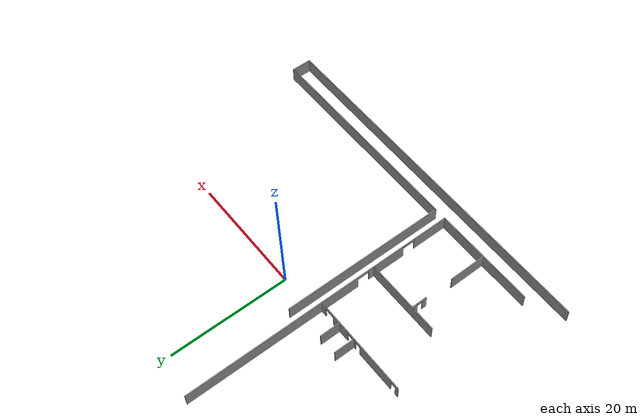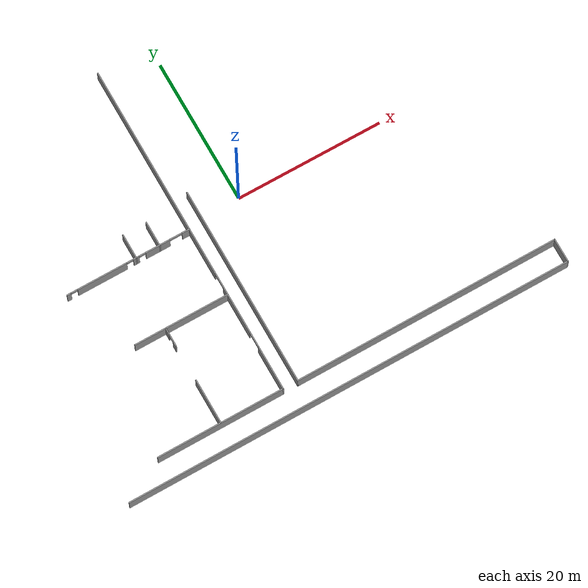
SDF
<sdf version="1.6">
 <model name="EDML">
  <link name="Wall_0">
   <pose>1.5e-05 -27.6701 0 0 -0 0</pose>
   <visual name="Wall_0_Visual">
    <pose>0 0 1.25 0 -0 0</pose>
    <geometry><box><size>61.603 0.15 2.5</size></box></geometry>
    <material>
     <script><uri>file://media/materials/scripts/gazebo.material</uri><name>Gazebo/Grey</name></script>
     <ambient>1 1 1 1</ambient>
     <diffuse>0.7 0.7 0.7 1</diffuse>
     <specular>0.01 0.01 0.01 1</specular>
     <emissive>0 0 0 1</emissive>
    </material>
   </visual>
   <collision name="Wall_0_Collision">
    <pose>0 0 1.25 0 -0 0</pose>
    <geometry><box><size>61.603 0.15 2.5</size></box></geometry>
    <surface>
     <friction>
      <ode><mu>1</mu><mu2>1</mu2><fdir1>0 0 0</fdir1><slip1>0</slip1><slip2>0</slip2></ode>
      <torsional>
       <coefficient>1</coefficient>
       <patch_radius>0</patch_radius>
       <surface_radius>0</surface_radius>
       <use_patch_radius>1</use_patch_radius>
       <ode><slip>0</slip></ode>
      </torsional>
     </friction>
     <bounce><restitution_coefficient>0</restitution_coefficient><threshold>1e+06</threshold></bounce>
     <contact>
      <collide_without_contact>0</collide_without_contact>
      <collide_without_contact_bitmask>1</collide_without_contact_bitmask>
      <collide_bitmask>1</collide_bitmask>
      <ode>
       <soft_cfm>0</soft_cfm>
       <soft_erp>0.2</soft_erp>
       <kp>1e+13</kp>
       <kd>1</kd>
       <max_vel>0.01</max_vel>
       <min_depth>0</min_depth>
      </ode>
      <bullet>
       <split_impulse>1</split_impulse>
       <split_impulse_penetration_threshold>-0.01</split_impulse_penetration_threshold>
       <soft_cfm>0</soft_cfm>
       <soft_erp>0.2</soft_erp>
       <kp>1e+13</kp>
       <kd>1</kd>
      </bullet>
     </contact>
    </surface>
   </collision>
  </link>
  <link name="Wall_10">
   <pose>-7.59652 -1.15055 0 0 -0 1.5708</pose>
   <visual name="Wall_10_Visual_0">
    <pose>-20.3098 0 1.25 0 -0 0</pose>
    <geometry><box><size>6.1505 0.15 2.5</size></box></geometry>
    <material>
     <script><uri>file://media/materials/scripts/gazebo.material</uri><name>Gazebo/Grey</name></script>
     <ambient>1 1 1 1</ambient>
     <diffuse>0.7 0.7 0.7 1</diffuse>
     <specular>0.01 0.01 0.01 1</specular>
     <emissive>0 0 0 1</emissive>
    </material>
   </visual>
   <visual name="Wall_10_Visual_1">
    <pose>-11.8405 0 1.25 0 -0 0</pose>
    <geometry><box><size>6.588 0.15 2.5</size></box></geometry>
    <material>
     <script><uri>file://media/materials/scripts/gazebo.material</uri><name>Gazebo/Grey</name></script>
     <ambient>1 1 1 1</ambient>
     <diffuse>0.7 0.7 0.7 1</diffuse>
     <specular>0.01 0.01 0.01 1</specular>
     <emissive>0 0 0 1</emissive>
    </material>
   </visual>
   <visual name="Wall_10_Visual_2">
    <pose>8.42925 0 1.25 0 -0 0</pose>
    <geometry><box><size>29.9115 0.15 2.5</size></box></geometry>
    <material>
     <script><uri>file://media/materials/scripts/gazebo.material</uri><name>Gazebo/Grey</name></script>
     <ambient>1 1 1 1</ambient>
     <diffuse>0.7 0.7 0.7 1</diffuse>
     <specular>0.01 0.01 0.01 1</specular>
     <emissive>0 0 0 1</emissive>
    </material>
   </visual>
   <visual name="Wall_10_Visual_3">
    <pose>-16.1845 0 2.25 0 -0 0</pose>
    <geometry><box><size>2.1 0.15 0.5</size></box></geometry>
    <material>
     <script><uri>file://media/materials/scripts/gazebo.material</uri><name>Gazebo/Grey</name></script>
     <ambient>1 1 1 1</ambient>
     <diffuse>0.7 0.7 0.7 1</diffuse>
     <specular>0.01 0.01 0.01 1</specular>
     <emissive>0 0 0 1</emissive>
    </material>
   </visual>
   <visual name="Wall_10_Visual_4">
    <pose>-7.53651 0 2.25 0 -0 0</pose>
    <geometry><box><size>2.02 0.15 0.5</size></box></geometry>
    <material>
     <script><uri>file://media/materials/scripts/gazebo.material</uri><name>Gazebo/Grey</name></script>
     <ambient>1 1 1 1</ambient>
     <diffuse>0.7 0.7 0.7 1</diffuse>
     <specular>0.01 0.01 0.01 1</specular>
     <emissive>0 0 0 1</emissive>
    </material>
   </visual>
   <collision name="Wall_10_Collision_0">
    <pose>-20.3098 0 1.25 0 -0 0</pose>
    <geometry><box><size>6.1505 0.15 2.5</size></box></geometry>
    <surface>
     <friction>
      <ode><mu>1</mu><mu2>1</mu2><fdir1>0 0 0</fdir1><slip1>0</slip1><slip2>0</slip2></ode>
      <torsional>
       <coefficient>1</coefficient>
       <patch_radius>0</patch_radius>
       <surface_radius>0</surface_radius>
       <use_patch_radius>1</use_patch_radius>
       <ode><slip>0</slip></ode>
      </torsional>
     </friction>
     <bounce><restitution_coefficient>0</restitution_coefficient><threshold>1e+06</threshold></bounce>
     <contact>
      <collide_without_contact>0</collide_without_contact>
      <collide_without_contact_bitmask>1</collide_without_contact_bitmask>
      <collide_bitmask>1</collide_bitmask>
      <ode>
       <soft_cfm>0</soft_cfm>
       <soft_erp>0.2</soft_erp>
       <kp>1e+13</kp>
       <kd>1</kd>
       <max_vel>0.01</max_vel>
       <min_depth>0</min_depth>
      </ode>
      <bullet>
       <split_impulse>1</split_impulse>
       <split_impulse_penetration_threshold>-0.01</split_impulse_penetration_threshold>
       <soft_cfm>0</soft_cfm>
       <soft_erp>0.2</soft_erp>
       <kp>1e+13</kp>
       <kd>1</kd>
      </bullet>
     </contact>
    </surface>
   </collision>
   <collision name="Wall_10_Collision_1">
    <pose>-11.8405 0 1.25 0 -0 0</pose>
    <geometry><box><size>6.588 0.15 2.5</size></box></geometry>
    <surface>
     <friction>
      <ode><mu>1</mu><mu2>1</mu2><fdir1>0 0 0</fdir1><slip1>0</slip1><slip2>0</slip2></ode>
      <torsional>
       <coefficient>1</coefficient>
       <patch_radius>0</patch_radius>
       <surface_radius>0</surface_radius>
       <use_patch_radius>1</use_patch_radius>
       <ode><slip>0</slip></ode>
      </torsional>
     </friction>
     <bounce><restitution_coefficient>0</restitution_coefficient><threshold>1e+06</threshold></bounce>
     <contact>
      <collide_without_contact>0</collide_without_contact>
      <collide_without_contact_bitmask>1</collide_without_contact_bitmask>
      <collide_bitmask>1</collide_bitmask>
      <ode>
       <soft_cfm>0</soft_cfm>
       <soft_erp>0.2</soft_erp>
       <kp>1e+13</kp>
       <kd>1</kd>
       <max_vel>0.01</max_vel>
       <min_depth>0</min_depth>
      </ode>
      <bullet>
       <split_impulse>1</split_impulse>
       <split_impulse_penetration_threshold>-0.01</split_impulse_penetration_threshold>
       <soft_cfm>0</soft_cfm>
       <soft_erp>0.2</soft_erp>
       <kp>1e+13</kp>
       <kd>1</kd>
      </bullet>
     </contact>
    </surface>
   </collision>
   <collision name="Wall_10_Collision_2">
    <pose>8.42925 0 1.25 0 -0 0</pose>
    <geometry><box><size>29.9115 0.15 2.5</size></box></geometry>
    <surface>
     <friction>
      <ode><mu>1</mu><mu2>1</mu2><fdir1>0 0 0</fdir1><slip1>0</slip1><slip2>0</slip2></ode>
      <torsional>
       <coefficient>1</coefficient>
       <patch_radius>0</patch_radius>
       <surface_radius>0</surface_radius>
       <use_patch_radius>1</use_patch_radius>
       <ode><slip>0</slip></ode>
      </torsional>
     </friction>
     <bounce><restitution_coefficient>0</restitution_coefficient><threshold>1e+06</threshold></bounce>
     <contact>
      <collide_without_contact>0</collide_without_contact>
      <collide_without_contact_bitmask>1</collide_without_contact_bitmask>
      <collide_bitmask>1</collide_bitmask>
      <ode>
       <soft_cfm>0</soft_cfm>
       <soft_erp>0.2</soft_erp>
       <kp>1e+13</kp>
       <kd>1</kd>
       <max_vel>0.01</max_vel>
       <min_depth>0</min_depth>
      </ode>
      <bullet>
       <split_impulse>1</split_impulse>
       <split_impulse_penetration_threshold>-0.01</split_impulse_penetration_threshold>
       <soft_cfm>0</soft_cfm>
       <soft_erp>0.2</soft_erp>
       <kp>1e+13</kp>
       <kd>1</kd>
      </bullet>
     </contact>
    </surface>
   </collision>
   <collision name="Wall_10_Collision_3">
    <pose>-16.1845 0 2.25 0 -0 0</pose>
    <geometry><box><size>2.1 0.15 0.5</size></box></geometry>
    <surface>
     <friction>
      <ode><mu>1</mu><mu2>1</mu2><fdir1>0 0 0</fdir1><slip1>0</slip1><slip2>0</slip2></ode>
      <torsional>
       <coefficient>1</coefficient>
       <patch_radius>0</patch_radius>
       <surface_radius>0</surface_radius>
       <use_patch_radius>1</use_patch_radius>
       <ode><slip>0</slip></ode>
      </torsional>
     </friction>
     <bounce><restitution_coefficient>0</restitution_coefficient><threshold>1e+06</threshold></bounce>
     <contact>
      <collide_without_contact>0</collide_without_contact>
      <collide_without_contact_bitmask>1</collide_without_contact_bitmask>
      <collide_bitmask>1</collide_bitmask>
      <ode>
       <soft_cfm>0</soft_cfm>
       <soft_erp>0.2</soft_erp>
       <kp>1e+13</kp>
       <kd>1</kd>
       <max_vel>0.01</max_vel>
       <min_depth>0</min_depth>
      </ode>
      <bullet>
       <split_impulse>1</split_impulse>
       <split_impulse_penetration_threshold>-0.01</split_impulse_penetration_threshold>
       <soft_cfm>0</soft_cfm>
       <soft_erp>0.2</soft_erp>
       <kp>1e+13</kp>
       <kd>1</kd>
      </bullet>
     </contact>
    </surface>
   </collision>
   <collision name="Wall_10_Collision_4">
    <pose>-7.53651 0 2.25 0 -0 0</pose>
    <geometry><box><size>2.02 0.15 0.5</size></box></geometry>
    <surface>
     <friction>
      <ode><mu>1</mu><mu2>1</mu2><fdir1>0 0 0</fdir1><slip1>0</slip1><slip2>0</slip2></ode>
      <torsional>
       <coefficient>1</coefficient>
       <patch_radius>0</patch_radius>
       <surface_radius>0</surface_radius>
       <use_patch_radius>1</use_patch_radius>
       <ode><slip>0</slip></ode>
      </torsional>
     </friction>
     <bounce><restitution_coefficient>0</restitution_coefficient><threshold>1e+06</threshold></bounce>
     <contact>
      <collide_without_contact>0</collide_without_contact>
      <collide_without_contact_bitmask>1</collide_without_contact_bitmask>
      <collide_bitmask>1</collide_bitmask>
      <ode>
       <soft_cfm>0</soft_cfm>
       <soft_erp>0.2</soft_erp>
       <kp>1e+13</kp>
       <kd>1</kd>
       <max_vel>0.01</max_vel>
       <min_depth>0</min_depth>
      </ode>
      <bullet>
       <split_impulse>1</split_impulse>
       <split_impulse_penetration_threshold>-0.01</split_impulse_penetration_threshold>
       <soft_cfm>0</soft_cfm>
       <soft_erp>0.2</soft_erp>
       <kp>1e+13</kp>
       <kd>1</kd>
      </bullet>
     </contact>
    </surface>
   </collision>
  </link>
  <link name="Wall_166">
   <pose>-5.54148 -10.6641 0 0 0 -1.5708</pose>
   <visual name="Wall_166_Visual">
    <pose>0 0 1.25 0 -0 0</pose>
    <geometry><box><size>27.742 0.15 2.5</size></box></geometry>
    <material>
     <script><uri>file://media/materials/scripts/gazebo.material</uri><name>Gazebo/Grey</name></script>
     <ambient>1 1 1 1</ambient>
     <diffuse>0.7 0.7 0.7 1</diffuse>
     <specular>0.01 0.01 0.01 1</specular>
     <emissive>0 0 0 1</emissive>
    </material>
   </visual>
   <collision name="Wall_166_Collision">
    <pose>0 0 1.25 0 -0 0</pose>
    <geometry><box><size>27.742 0.15 2.5</size></box></geometry>
    <surface>
     <friction>
      <ode><mu>1</mu><mu2>1</mu2><fdir1>0 0 0</fdir1><slip1>0</slip1><slip2>0</slip2></ode>
      <torsional>
       <coefficient>1</coefficient>
       <patch_radius>0</patch_radius>
       <surface_radius>0</surface_radius>
       <use_patch_radius>1</use_patch_radius>
       <ode><slip>0</slip></ode>
      </torsional>
     </friction>
     <bounce><restitution_coefficient>0</restitution_coefficient><threshold>1e+06</threshold></bounce>
     <contact>
      <collide_without_contact>0</collide_without_contact>
      <collide_without_contact_bitmask>1</collide_without_contact_bitmask>
      <collide_bitmask>1</collide_bitmask>
      <ode>
       <soft_cfm>0</soft_cfm>
       <soft_erp>0.2</soft_erp>
       <kp>1e+13</kp>
       <kd>1</kd>
       <max_vel>0.01</max_vel>
       <min_depth>0</min_depth>
      </ode>
      <bullet>
       <split_impulse>1</split_impulse>
       <split_impulse_penetration_threshold>-0.01</split_impulse_penetration_threshold>
       <soft_cfm>0</soft_cfm>
       <soft_erp>0.2</soft_erp>
       <kp>1e+13</kp>
       <kd>1</kd>
      </bullet>
     </contact>
    </surface>
   </collision>
  </link>
  <link name="Wall_167">
   <pose>12.5925 -24.4601 0 0 -0 0</pose>
   <visual name="Wall_167_Visual">
    <pose>0 0 1.25 0 -0 0</pose>
    <geometry><box><size>36.418 0.15 2.5</size></box></geometry>
    <material>
     <script><uri>file://media/materials/scripts/gazebo.material</uri><name>Gazebo/Grey</name></script>
     <ambient>1 1 1 1</ambient>
     <diffuse>0.7 0.7 0.7 1</diffuse>
     <specular>0.01 0.01 0.01 1</specular>
     <emissive>0 0 0 1</emissive>
    </material>
   </visual>
   <collision name="Wall_167_Collision">
    <pose>0 0 1.25 0 -0 0</pose>
    <geometry><box><size>36.418 0.15 2.5</size></box></geometry>
    <surface>
     <friction>
      <ode><mu>1</mu><mu2>1</mu2><fdir1>0 0 0</fdir1><slip1>0</slip1><slip2>0</slip2></ode>
      <torsional>
       <coefficient>1</coefficient>
       <patch_radius>0</patch_radius>
       <surface_radius>0</surface_radius>
       <use_patch_radius>1</use_patch_radius>
       <ode><slip>0</slip></ode>
      </torsional>
     </friction>
     <bounce><restitution_coefficient>0</restitution_coefficient><threshold>1e+06</threshold></bounce>
     <contact>
      <collide_without_contact>0</collide_without_contact>
      <collide_without_contact_bitmask>1</collide_without_contact_bitmask>
      <collide_bitmask>1</collide_bitmask>
      <ode>
       <soft_cfm>0</soft_cfm>
       <soft_erp>0.2</soft_erp>
       <kp>1e+13</kp>
       <kd>1</kd>
       <max_vel>0.01</max_vel>
       <min_depth>0</min_depth>
      </ode>
      <bullet>
       <split_impulse>1</split_impulse>
       <split_impulse_penetration_threshold>-0.01</split_impulse_penetration_threshold>
       <soft_cfm>0</soft_cfm>
       <soft_erp>0.2</soft_erp>
       <kp>1e+13</kp>
       <kd>1</kd>
      </bullet>
     </contact>
    </surface>
   </collision>
  </link>
  <link name="Wall_168">
   <pose>30.7265 -26.0651 0 0 0 -1.5708</pose>
   <visual name="Wall_168_Visual">
    <pose>0 0 1.25 0 -0 0</pose>
    <geometry><box><size>3.36 0.15 2.5</size></box></geometry>
    <material>
     <script><uri>file://media/materials/scripts/gazebo.material</uri><name>Gazebo/Grey</name></script>
     <ambient>1 1 1 1</ambient>
     <diffuse>0.7 0.7 0.7 1</diffuse>
     <specular>0.01 0.01 0.01 1</specular>
     <emissive>0 0 0 1</emissive>
    </material>
   </visual>
   <collision name="Wall_168_Collision">
    <pose>0 0 1.25 0 -0 0</pose>
    <geometry><box><size>3.36 0.15 2.5</size></box></geometry>
    <surface>
     <friction>
      <ode><mu>1</mu><mu2>1</mu2><fdir1>0 0 0</fdir1><slip1>0</slip1><slip2>0</slip2></ode>
      <torsional>
       <coefficient>1</coefficient>
       <patch_radius>0</patch_radius>
       <surface_radius>0</surface_radius>
       <use_patch_radius>1</use_patch_radius>
       <ode><slip>0</slip></ode>
      </torsional>
     </friction>
     <bounce><restitution_coefficient>0</restitution_coefficient><threshold>1e+06</threshold></bounce>
     <contact>
      <collide_without_contact>0</collide_without_contact>
      <collide_without_contact_bitmask>1</collide_without_contact_bitmask>
      <collide_bitmask>1</collide_bitmask>
      <ode>
       <soft_cfm>0</soft_cfm>
       <soft_erp>0.2</soft_erp>
       <kp>1e+13</kp>
       <kd>1</kd>
       <max_vel>0.01</max_vel>
       <min_depth>0</min_depth>
      </ode>
      <bullet>
       <split_impulse>1</split_impulse>
       <split_impulse_penetration_threshold>-0.01</split_impulse_penetration_threshold>
       <soft_cfm>0</soft_cfm>
       <soft_erp>0.2</soft_erp>
       <kp>1e+13</kp>
       <kd>1</kd>
      </bullet>
     </contact>
    </surface>
   </collision>
  </link>
  <link name="Wall_57">
   <pose>-14.0803 -10.7286 0 0 -0 3.14159</pose>
   <visual name="Wall_57_Visual">
    <pose>0 0 1.25 0 -0 0</pose>
    <geometry><box><size>13.087 0.15 2.5</size></box></geometry>
    <material>
     <script><uri>file://media/materials/scripts/gazebo.material</uri><name>Gazebo/Grey</name></script>
     <ambient>1 1 1 1</ambient>
     <diffuse>0.7 0.7 0.7 1</diffuse>
     <specular>0.01 0.01 0.01 1</specular>
     <emissive>0 0 0 1</emissive>
    </material>
   </visual>
   <collision name="Wall_57_Collision">
    <pose>0 0 1.25 0 -0 0</pose>
    <geometry><box><size>13.087 0.15 2.5</size></box></geometry>
    <surface>
     <friction>
      <ode><mu>1</mu><mu2>1</mu2><fdir1>0 0 0</fdir1><slip1>0</slip1><slip2>0</slip2></ode>
      <torsional>
       <coefficient>1</coefficient>
       <patch_radius>0</patch_radius>
       <surface_radius>0</surface_radius>
       <use_patch_radius>1</use_patch_radius>
       <ode><slip>0</slip></ode>
      </torsional>
     </friction>
     <bounce><restitution_coefficient>0</restitution_coefficient><threshold>1e+06</threshold></bounce>
     <contact>
      <collide_without_contact>0</collide_without_contact>
      <collide_without_contact_bitmask>1</collide_without_contact_bitmask>
      <collide_bitmask>1</collide_bitmask>
      <ode>
       <soft_cfm>0</soft_cfm>
       <soft_erp>0.2</soft_erp>
       <kp>1e+13</kp>
       <kd>1</kd>
       <max_vel>0.01</max_vel>
       <min_depth>0</min_depth>
      </ode>
      <bullet>
       <split_impulse>1</split_impulse>
       <split_impulse_penetration_threshold>-0.01</split_impulse_penetration_threshold>
       <soft_cfm>0</soft_cfm>
       <soft_erp>0.2</soft_erp>
       <kp>1e+13</kp>
       <kd>1</kd>
      </bullet>
     </contact>
    </surface>
   </collision>
  </link>
  <link name="Wall_64">
   <pose>-16.2755 -21.3797 0 0 0 -1.5708</pose>
   <visual name="Wall_64_Visual">
    <pose>0 0 1.25 0 -0 0</pose>
    <geometry><box><size>6.25 0.15 2.5</size></box></geometry>
    <material>
     <script><uri>file://media/materials/scripts/gazebo.material</uri><name>Gazebo/Grey</name></script>
     <ambient>1 1 1 1</ambient>
     <diffuse>0.7 0.7 0.7 1</diffuse>
     <specular>0.01 0.01 0.01 1</specular>
     <emissive>0 0 0 1</emissive>
    </material>
   </visual>
   <collision name="Wall_64_Collision">
    <pose>0 0 1.25 0 -0 0</pose>
    <geometry><box><size>6.25 0.15 2.5</size></box></geometry>
    <surface>
     <friction>
      <ode><mu>1</mu><mu2>1</mu2><fdir1>0 0 0</fdir1><slip1>0</slip1><slip2>0</slip2></ode>
      <torsional>
       <coefficient>1</coefficient>
       <patch_radius>0</patch_radius>
       <surface_radius>0</surface_radius>
       <use_patch_radius>1</use_patch_radius>
       <ode><slip>0</slip></ode>
      </torsional>
     </friction>
     <bounce><restitution_coefficient>0</restitution_coefficient><threshold>1e+06</threshold></bounce>
     <contact>
      <collide_without_contact>0</collide_without_contact>
      <collide_without_contact_bitmask>1</collide_without_contact_bitmask>
      <collide_bitmask>1</collide_bitmask>
      <ode>
       <soft_cfm>0</soft_cfm>
       <soft_erp>0.2</soft_erp>
       <kp>1e+13</kp>
       <kd>1</kd>
       <max_vel>0.01</max_vel>
       <min_depth>0</min_depth>
      </ode>
      <bullet>
       <split_impulse>1</split_impulse>
       <split_impulse_penetration_threshold>-0.01</split_impulse_penetration_threshold>
       <soft_cfm>0</soft_cfm>
       <soft_erp>0.2</soft_erp>
       <kp>1e+13</kp>
       <kd>1</kd>
      </bullet>
     </contact>
    </surface>
   </collision>
  </link>
  <link name="Wall_68">
   <pose>-16.2825 -12.0341 0 0 0 -1.5708</pose>
   <visual name="Wall_68_Visual_0">
    <pose>-0.844009 0 1.25 0 -0 0</pose>
    <geometry><box><size>1.00798 0.15 2.5</size></box></geometry>
    <material>
     <script><uri>file://media/materials/scripts/gazebo.material</uri><name>Gazebo/Grey</name></script>
     <ambient>1 1 1 1</ambient>
     <diffuse>0.7 0.7 0.7 1</diffuse>
     <specular>0.01 0.01 0.01 1</specular>
     <emissive>0 0 0 1</emissive>
    </material>
   </visual>
   <visual name="Wall_68_Visual_1">
    <pose>0.958991 0 1.25 0 -0 0</pose>
    <geometry><box><size>0.778018 0.15 2.5</size></box></geometry>
    <material>
     <script><uri>file://media/materials/scripts/gazebo.material</uri><name>Gazebo/Grey</name></script>
     <ambient>1 1 1 1</ambient>
     <diffuse>0.7 0.7 0.7 1</diffuse>
     <specular>0.01 0.01 0.01 1</specular>
     <emissive>0 0 0 1</emissive>
    </material>
   </visual>
   <visual name="Wall_68_Visual_2">
    <pose>0.114982 0 2.25 0 -0 0</pose>
    <geometry><box><size>0.91 0.15 0.5</size></box></geometry>
    <material>
     <script><uri>file://media/materials/scripts/gazebo.material</uri><name>Gazebo/Grey</name></script>
     <ambient>1 1 1 1</ambient>
     <diffuse>0.7 0.7 0.7 1</diffuse>
     <specular>0.01 0.01 0.01 1</specular>
     <emissive>0 0 0 1</emissive>
    </material>
   </visual>
   <collision name="Wall_68_Collision_0">
    <pose>-0.844009 0 1.25 0 -0 0</pose>
    <geometry><box><size>1.00798 0.15 2.5</size></box></geometry>
    <surface>
     <friction>
      <ode><mu>1</mu><mu2>1</mu2><fdir1>0 0 0</fdir1><slip1>0</slip1><slip2>0</slip2></ode>
      <torsional>
       <coefficient>1</coefficient>
       <patch_radius>0</patch_radius>
       <surface_radius>0</surface_radius>
       <use_patch_radius>1</use_patch_radius>
       <ode><slip>0</slip></ode>
      </torsional>
     </friction>
     <bounce><restitution_coefficient>0</restitution_coefficient><threshold>1e+06</threshold></bounce>
     <contact>
      <collide_without_contact>0</collide_without_contact>
      <collide_without_contact_bitmask>1</collide_without_contact_bitmask>
      <collide_bitmask>1</collide_bitmask>
      <ode>
       <soft_cfm>0</soft_cfm>
       <soft_erp>0.2</soft_erp>
       <kp>1e+13</kp>
       <kd>1</kd>
       <max_vel>0.01</max_vel>
       <min_depth>0</min_depth>
      </ode>
      <bullet>
       <split_impulse>1</split_impulse>
       <split_impulse_penetration_threshold>-0.01</split_impulse_penetration_threshold>
       <soft_cfm>0</soft_cfm>
       <soft_erp>0.2</soft_erp>
       <kp>1e+13</kp>
       <kd>1</kd>
      </bullet>
     </contact>
    </surface>
   </collision>
   <collision name="Wall_68_Collision_1">
    <pose>0.958991 0 1.25 0 -0 0</pose>
    <geometry><box><size>0.778018 0.15 2.5</size></box></geometry>
    <surface>
     <friction>
      <ode><mu>1</mu><mu2>1</mu2><fdir1>0 0 0</fdir1><slip1>0</slip1><slip2>0</slip2></ode>
      <torsional>
       <coefficient>1</coefficient>
       <patch_radius>0</patch_radius>
       <surface_radius>0</surface_radius>
       <use_patch_radius>1</use_patch_radius>
       <ode><slip>0</slip></ode>
      </torsional>
     </friction>
     <bounce><restitution_coefficient>0</restitution_coefficient><threshold>1e+06</threshold></bounce>
     <contact>
      <collide_without_contact>0</collide_without_contact>
      <collide_without_contact_bitmask>1</collide_without_contact_bitmask>
      <collide_bitmask>1</collide_bitmask>
      <ode>
       <soft_cfm>0</soft_cfm>
       <soft_erp>0.2</soft_erp>
       <kp>1e+13</kp>
       <kd>1</kd>
       <max_vel>0.01</max_vel>
       <min_depth>0</min_depth>
      </ode>
      <bullet>
       <split_impulse>1</split_impulse>
       <split_impulse_penetration_threshold>-0.01</split_impulse_penetration_threshold>
       <soft_cfm>0</soft_cfm>
       <soft_erp>0.2</soft_erp>
       <kp>1e+13</kp>
       <kd>1</kd>
      </bullet>
     </contact>
    </surface>
   </collision>
   <collision name="Wall_68_Collision_2">
    <pose>0.114982 0 2.25 0 -0 0</pose>
    <geometry><box><size>0.91 0.15 0.5</size></box></geometry>
    <surface>
     <friction>
      <ode><mu>1</mu><mu2>1</mu2><fdir1>0 0 0</fdir1><slip1>0</slip1><slip2>0</slip2></ode>
      <torsional>
       <coefficient>1</coefficient>
       <patch_radius>0</patch_radius>
       <surface_radius>0</surface_radius>
       <use_patch_radius>1</use_patch_radius>
       <ode><slip>0</slip></ode>
      </torsional>
     </friction>
     <bounce><restitution_coefficient>0</restitution_coefficient><threshold>1e+06</threshold></bounce>
     <contact>
      <collide_without_contact>0</collide_without_contact>
      <collide_without_contact_bitmask>1</collide_without_contact_bitmask>
      <collide_bitmask>1</collide_bitmask>
      <ode>
       <soft_cfm>0</soft_cfm>
       <soft_erp>0.2</soft_erp>
       <kp>1e+13</kp>
       <kd>1</kd>
       <max_vel>0.01</max_vel>
       <min_depth>0</min_depth>
      </ode>
      <bullet>
       <split_impulse>1</split_impulse>
       <split_impulse_penetration_threshold>-0.01</split_impulse_penetration_threshold>
       <soft_cfm>0</soft_cfm>
       <soft_erp>0.2</soft_erp>
       <kp>1e+13</kp>
       <kd>1</kd>
      </bullet>
     </contact>
    </surface>
   </collision>
  </link>
  <link name="Wall_8">
   <pose>-16.2965 -24.4605 0 0 -0 0</pose>
   <visual name="Wall_8_Visual">
    <pose>0 0 1.25 0 -0 0</pose>
    <geometry><box><size>17.55 0.15 2.5</size></box></geometry>
    <material>
     <script><uri>file://media/materials/scripts/gazebo.material</uri><name>Gazebo/Grey</name></script>
     <ambient>1 1 1 1</ambient>
     <diffuse>0.7 0.7 0.7 1</diffuse>
     <specular>0.01 0.01 0.01 1</specular>
     <emissive>0 0 0 1</emissive>
    </material>
   </visual>
   <collision name="Wall_8_Collision">
    <pose>0 0 1.25 0 -0 0</pose>
    <geometry><box><size>17.55 0.15 2.5</size></box></geometry>
    <surface>
     <friction>
      <ode><mu>1</mu><mu2>1</mu2><fdir1>0 0 0</fdir1><slip1>0</slip1><slip2>0</slip2></ode>
      <torsional>
       <coefficient>1</coefficient>
       <patch_radius>0</patch_radius>
       <surface_radius>0</surface_radius>
       <use_patch_radius>1</use_patch_radius>
       <ode><slip>0</slip></ode>
      </torsional>
     </friction>
     <bounce><restitution_coefficient>0</restitution_coefficient><threshold>1e+06</threshold></bounce>
     <contact>
      <collide_without_contact>0</collide_without_contact>
      <collide_without_contact_bitmask>1</collide_without_contact_bitmask>
      <collide_bitmask>1</collide_bitmask>
      <ode>
       <soft_cfm>0</soft_cfm>
       <soft_erp>0.2</soft_erp>
       <kp>1e+13</kp>
       <kd>1</kd>
       <max_vel>0.01</max_vel>
       <min_depth>0</min_depth>
      </ode>
      <bullet>
       <split_impulse>1</split_impulse>
       <split_impulse_penetration_threshold>-0.01</split_impulse_penetration_threshold>
       <soft_cfm>0</soft_cfm>
       <soft_erp>0.2</soft_erp>
       <kp>1e+13</kp>
       <kd>1</kd>
      </bullet>
     </contact>
    </surface>
   </collision>
  </link>
  <link name="Wall_83">
   <pose>-16.1589 -1.09905 0 0 -0 0</pose>
   <visual name="Wall_83_Visual_0">
    <pose>-8.31306 0 1.25 0 -0 0</pose>
    <geometry><box><size>0.579128 0.15 2.5</size></box></geometry>
    <material>
     <script><uri>file://media/materials/scripts/gazebo.material</uri><name>Gazebo/Grey</name></script>
     <ambient>1 1 1 1</ambient>
     <diffuse>0.7 0.7 0.7 1</diffuse>
     <specular>0.01 0.01 0.01 1</specular>
     <emissive>0 0 0 1</emissive>
    </material>
   </visual>
   <visual name="Wall_83_Visual_1">
    <pose>-3.66839 0 1.25 0 -0 0</pose>
    <geometry><box><size>6.88021 0.15 2.5</size></box></geometry>
    <material>
     <script><uri>file://media/materials/scripts/gazebo.material</uri><name>Gazebo/Grey</name></script>
     <ambient>1 1 1 1</ambient>
     <diffuse>0.7 0.7 0.7 1</diffuse>
     <specular>0.01 0.01 0.01 1</specular>
     <emissive>0 0 0 1</emissive>
    </material>
   </visual>
   <visual name="Wall_83_Visual_2">
    <pose>1.09349 0 1.25 0 -0 0</pose>
    <geometry><box><size>0.813553 0.15 2.5</size></box></geometry>
    <material>
     <script><uri>file://media/materials/scripts/gazebo.material</uri><name>Gazebo/Grey</name></script>
     <ambient>1 1 1 1</ambient>
     <diffuse>0.7 0.7 0.7 1</diffuse>
     <specular>0.01 0.01 0.01 1</specular>
     <emissive>0 0 0 1</emissive>
    </material>
   </visual>
   <visual name="Wall_83_Visual_3">
    <pose>4.10893 0 1.25 0 -0 0</pose>
    <geometry><box><size>3.38732 0.15 2.5</size></box></geometry>
    <material>
     <script><uri>file://media/materials/scripts/gazebo.material</uri><name>Gazebo/Grey</name></script>
     <ambient>1 1 1 1</ambient>
     <diffuse>0.7 0.7 0.7 1</diffuse>
     <specular>0.01 0.01 0.01 1</specular>
     <emissive>0 0 0 1</emissive>
    </material>
   </visual>
   <visual name="Wall_83_Visual_4">
    <pose>8.05611 0 1.25 0 -0 0</pose>
    <geometry><box><size>1.09304 0.15 2.5</size></box></geometry>
    <material>
     <script><uri>file://media/materials/scripts/gazebo.material</uri><name>Gazebo/Grey</name></script>
     <ambient>1 1 1 1</ambient>
     <diffuse>0.7 0.7 0.7 1</diffuse>
     <specular>0.01 0.01 0.01 1</specular>
     <emissive>0 0 0 1</emissive>
    </material>
   </visual>
   <visual name="Wall_83_Visual_5">
    <pose>-7.566 0 2.25 0 -0 0</pose>
    <geometry><box><size>0.915 0.15 0.5</size></box></geometry>
    <material>
     <script><uri>file://media/materials/scripts/gazebo.material</uri><name>Gazebo/Grey</name></script>
     <ambient>1 1 1 1</ambient>
     <diffuse>0.7 0.7 0.7 1</diffuse>
     <specular>0.01 0.01 0.01 1</specular>
     <emissive>0 0 0 1</emissive>
    </material>
   </visual>
   <visual name="Wall_83_Visual_6">
    <pose>0.229216 0 2.25 0 -0 0</pose>
    <geometry><box><size>0.915 0.15 0.5</size></box></geometry>
    <material>
     <script><uri>file://media/materials/scripts/gazebo.material</uri><name>Gazebo/Grey</name></script>
     <ambient>1 1 1 1</ambient>
     <diffuse>0.7 0.7 0.7 1</diffuse>
     <specular>0.01 0.01 0.01 1</specular>
     <emissive>0 0 0 1</emissive>
    </material>
   </visual>
   <visual name="Wall_83_Visual_7">
    <pose>1.95777 0 2.25 0 -0 0</pose>
    <geometry><box><size>0.915 0.15 0.5</size></box></geometry>
    <material>
     <script><uri>file://media/materials/scripts/gazebo.material</uri><name>Gazebo/Grey</name></script>
     <ambient>1 1 1 1</ambient>
     <diffuse>0.7 0.7 0.7 1</diffuse>
     <specular>0.01 0.01 0.01 1</specular>
     <emissive>0 0 0 1</emissive>
    </material>
   </visual>
   <visual name="Wall_83_Visual_8">
    <pose>6.65609 0 2.25 0 -0 0</pose>
    <geometry><box><size>1.707 0.15 0.5</size></box></geometry>
    <material>
     <script><uri>file://media/materials/scripts/gazebo.material</uri><name>Gazebo/Grey</name></script>
     <ambient>1 1 1 1</ambient>
     <diffuse>0.7 0.7 0.7 1</diffuse>
     <specular>0.01 0.01 0.01 1</specular>
     <emissive>0 0 0 1</emissive>
    </material>
   </visual>
   <collision name="Wall_83_Collision_8">
    <pose>6.65609 0 2.25 0 -0 0</pose>
    <geometry><box><size>1.707 0.15 0.5</size></box></geometry>
    <surface>
     <friction>
      <ode><mu>1</mu><mu2>1</mu2><fdir1>0 0 0</fdir1><slip1>0</slip1><slip2>0</slip2></ode>
      <torsional>
       <coefficient>1</coefficient>
       <patch_radius>0</patch_radius>
       <surface_radius>0</surface_radius>
       <use_patch_radius>1</use_patch_radius>
       <ode><slip>0</slip></ode>
      </torsional>
     </friction>
     <bounce><restitution_coefficient>0</restitution_coefficient><threshold>1e+06</threshold></bounce>
     <contact>
      <collide_without_contact>0</collide_without_contact>
      <collide_without_contact_bitmask>1</collide_without_contact_bitmask>
      <collide_bitmask>1</collide_bitmask>
      <ode>
       <soft_cfm>0</soft_cfm>
       <soft_erp>0.2</soft_erp>
       <kp>1e+13</kp>
       <kd>1</kd>
       <max_vel>0.01</max_vel>
       <min_depth>0</min_depth>
      </ode>
      <bullet>
       <split_impulse>1</split_impulse>
       <split_impulse_penetration_threshold>-0.01</split_impulse_penetration_threshold>
       <soft_cfm>0</soft_cfm>
       <soft_erp>0.2</soft_erp>
       <kp>1e+13</kp>
       <kd>1</kd>
      </bullet>
     </contact>
    </surface>
   </collision>
   <collision name="Wall_83_Collision_0">
    <pose>-8.31306 0 1.25 0 -0 0</pose>
    <geometry><box><size>0.579128 0.15 2.5</size></box></geometry>
    <surface>
     <friction>
      <ode><mu>1</mu><mu2>1</mu2><fdir1>0 0 0</fdir1><slip1>0</slip1><slip2>0</slip2></ode>
      <torsional>
       <coefficient>1</coefficient>
       <patch_radius>0</patch_radius>
       <surface_radius>0</surface_radius>
       <use_patch_radius>1</use_patch_radius>
       <ode><slip>0</slip></ode>
      </torsional>
     </friction>
     <bounce><restitution_coefficient>0</restitution_coefficient><threshold>1e+06</threshold></bounce>
     <contact>
      <collide_without_contact>0</collide_without_contact>
      <collide_without_contact_bitmask>1</collide_without_contact_bitmask>
      <collide_bitmask>1</collide_bitmask>
      <ode>
       <soft_cfm>0</soft_cfm>
       <soft_erp>0.2</soft_erp>
       <kp>1e+13</kp>
       <kd>1</kd>
       <max_vel>0.01</max_vel>
       <min_depth>0</min_depth>
      </ode>
      <bullet>
       <split_impulse>1</split_impulse>
       <split_impulse_penetration_threshold>-0.01</split_impulse_penetration_threshold>
       <soft_cfm>0</soft_cfm>
       <soft_erp>0.2</soft_erp>
       <kp>1e+13</kp>
       <kd>1</kd>
      </bullet>
     </contact>
    </surface>
   </collision>
   <collision name="Wall_83_Collision_2">
    <pose>1.09349 0 1.25 0 -0 0</pose>
    <geometry><box><size>0.813553 0.15 2.5</size></box></geometry>
    <surface>
     <friction>
      <ode><mu>1</mu><mu2>1</mu2><fdir1>0 0 0</fdir1><slip1>0</slip1><slip2>0</slip2></ode>
      <torsional>
       <coefficient>1</coefficient>
       <patch_radius>0</patch_radius>
       <surface_radius>0</surface_radius>
       <use_patch_radius>1</use_patch_radius>
       <ode><slip>0</slip></ode>
      </torsional>
     </friction>
     <bounce><restitution_coefficient>0</restitution_coefficient><threshold>1e+06</threshold></bounce>
     <contact>
      <collide_without_contact>0</collide_without_contact>
      <collide_without_contact_bitmask>1</collide_without_contact_bitmask>
      <collide_bitmask>1</collide_bitmask>
      <ode>
       <soft_cfm>0</soft_cfm>
       <soft_erp>0.2</soft_erp>
       <kp>1e+13</kp>
       <kd>1</kd>
       <max_vel>0.01</max_vel>
       <min_depth>0</min_depth>
      </ode>
      <bullet>
       <split_impulse>1</split_impulse>
       <split_impulse_penetration_threshold>-0.01</split_impulse_penetration_threshold>
       <soft_cfm>0</soft_cfm>
       <soft_erp>0.2</soft_erp>
       <kp>1e+13</kp>
       <kd>1</kd>
      </bullet>
     </contact>
    </surface>
   </collision>
   <collision name="Wall_83_Collision_1">
    <pose>-3.66839 0 1.25 0 -0 0</pose>
    <geometry><box><size>6.88021 0.15 2.5</size></box></geometry>
    <surface>
     <friction>
      <ode><mu>1</mu><mu2>1</mu2><fdir1>0 0 0</fdir1><slip1>0</slip1><slip2>0</slip2></ode>
      <torsional>
       <coefficient>1</coefficient>
       <patch_radius>0</patch_radius>
       <surface_radius>0</surface_radius>
       <use_patch_radius>1</use_patch_radius>
       <ode><slip>0</slip></ode>
      </torsional>
     </friction>
     <bounce><restitution_coefficient>0</restitution_coefficient><threshold>1e+06</threshold></bounce>
     <contact>
      <collide_without_contact>0</collide_without_contact>
      <collide_without_contact_bitmask>1</collide_without_contact_bitmask>
      <collide_bitmask>1</collide_bitmask>
      <ode>
       <soft_cfm>0</soft_cfm>
       <soft_erp>0.2</soft_erp>
       <kp>1e+13</kp>
       <kd>1</kd>
       <max_vel>0.01</max_vel>
       <min_depth>0</min_depth>
      </ode>
      <bullet>
       <split_impulse>1</split_impulse>
       <split_impulse_penetration_threshold>-0.01</split_impulse_penetration_threshold>
       <soft_cfm>0</soft_cfm>
       <soft_erp>0.2</soft_erp>
       <kp>1e+13</kp>
       <kd>1</kd>
      </bullet>
     </contact>
    </surface>
   </collision>
   <collision name="Wall_83_Collision_3">
    <pose>4.10893 0 1.25 0 -0 0</pose>
    <geometry><box><size>3.38732 0.15 2.5</size></box></geometry>
    <surface>
     <friction>
      <ode><mu>1</mu><mu2>1</mu2><fdir1>0 0 0</fdir1><slip1>0</slip1><slip2>0</slip2></ode>
      <torsional>
       <coefficient>1</coefficient>
       <patch_radius>0</patch_radius>
       <surface_radius>0</surface_radius>
       <use_patch_radius>1</use_patch_radius>
       <ode><slip>0</slip></ode>
      </torsional>
     </friction>
     <bounce><restitution_coefficient>0</restitution_coefficient><threshold>1e+06</threshold></bounce>
     <contact>
      <collide_without_contact>0</collide_without_contact>
      <collide_without_contact_bitmask>1</collide_without_contact_bitmask>
      <collide_bitmask>1</collide_bitmask>
      <ode>
       <soft_cfm>0</soft_cfm>
       <soft_erp>0.2</soft_erp>
       <kp>1e+13</kp>
       <kd>1</kd>
       <max_vel>0.01</max_vel>
       <min_depth>0</min_depth>
      </ode>
      <bullet>
       <split_impulse>1</split_impulse>
       <split_impulse_penetration_threshold>-0.01</split_impulse_penetration_threshold>
       <soft_cfm>0</soft_cfm>
       <soft_erp>0.2</soft_erp>
       <kp>1e+13</kp>
       <kd>1</kd>
      </bullet>
     </contact>
    </surface>
   </collision>
   <collision name="Wall_83_Collision_4">
    <pose>8.05611 0 1.25 0 -0 0</pose>
    <geometry><box><size>1.09304 0.15 2.5</size></box></geometry>
    <surface>
     <friction>
      <ode><mu>1</mu><mu2>1</mu2><fdir1>0 0 0</fdir1><slip1>0</slip1><slip2>0</slip2></ode>
      <torsional>
       <coefficient>1</coefficient>
       <patch_radius>0</patch_radius>
       <surface_radius>0</surface_radius>
       <use_patch_radius>1</use_patch_radius>
       <ode><slip>0</slip></ode>
      </torsional>
     </friction>
     <bounce><restitution_coefficient>0</restitution_coefficient><threshold>1e+06</threshold></bounce>
     <contact>
      <collide_without_contact>0</collide_without_contact>
      <collide_without_contact_bitmask>1</collide_without_contact_bitmask>
      <collide_bitmask>1</collide_bitmask>
      <ode>
       <soft_cfm>0</soft_cfm>
       <soft_erp>0.2</soft_erp>
       <kp>1e+13</kp>
       <kd>1</kd>
       <max_vel>0.01</max_vel>
       <min_depth>0</min_depth>
      </ode>
      <bullet>
       <split_impulse>1</split_impulse>
       <split_impulse_penetration_threshold>-0.01</split_impulse_penetration_threshold>
       <soft_cfm>0</soft_cfm>
       <soft_erp>0.2</soft_erp>
       <kp>1e+13</kp>
       <kd>1</kd>
      </bullet>
     </contact>
    </surface>
   </collision>
   <collision name="Wall_83_Collision_5">
    <pose>-7.566 0 2.25 0 -0 0</pose>
    <geometry><box><size>0.915 0.15 0.5</size></box></geometry>
    <surface>
     <friction>
      <ode><mu>1</mu><mu2>1</mu2><fdir1>0 0 0</fdir1><slip1>0</slip1><slip2>0</slip2></ode>
      <torsional>
       <coefficient>1</coefficient>
       <patch_radius>0</patch_radius>
       <surface_radius>0</surface_radius>
       <use_patch_radius>1</use_patch_radius>
       <ode><slip>0</slip></ode>
      </torsional>
     </friction>
     <bounce><restitution_coefficient>0</restitution_coefficient><threshold>1e+06</threshold></bounce>
     <contact>
      <collide_without_contact>0</collide_without_contact>
      <collide_without_contact_bitmask>1</collide_without_contact_bitmask>
      <collide_bitmask>1</collide_bitmask>
      <ode>
       <soft_cfm>0</soft_cfm>
       <soft_erp>0.2</soft_erp>
       <kp>1e+13</kp>
       <kd>1</kd>
       <max_vel>0.01</max_vel>
       <min_depth>0</min_depth>
      </ode>
      <bullet>
       <split_impulse>1</split_impulse>
       <split_impulse_penetration_threshold>-0.01</split_impulse_penetration_threshold>
       <soft_cfm>0</soft_cfm>
       <soft_erp>0.2</soft_erp>
       <kp>1e+13</kp>
       <kd>1</kd>
      </bullet>
     </contact>
    </surface>
   </collision>
   <collision name="Wall_83_Collision_7">
    <pose>1.95777 0 2.25 0 -0 0</pose>
    <geometry><box><size>0.915 0.15 0.5</size></box></geometry>
    <surface>
     <friction>
      <ode><mu>1</mu><mu2>1</mu2><fdir1>0 0 0</fdir1><slip1>0</slip1><slip2>0</slip2></ode>
      <torsional>
       <coefficient>1</coefficient>
       <patch_radius>0</patch_radius>
       <surface_radius>0</surface_radius>
       <use_patch_radius>1</use_patch_radius>
       <ode><slip>0</slip></ode>
      </torsional>
     </friction>
     <bounce><restitution_coefficient>0</restitution_coefficient><threshold>1e+06</threshold></bounce>
     <contact>
      <collide_without_contact>0</collide_without_contact>
      <collide_without_contact_bitmask>1</collide_without_contact_bitmask>
      <collide_bitmask>1</collide_bitmask>
      <ode>
       <soft_cfm>0</soft_cfm>
       <soft_erp>0.2</soft_erp>
       <kp>1e+13</kp>
       <kd>1</kd>
       <max_vel>0.01</max_vel>
       <min_depth>0</min_depth>
      </ode>
      <bullet>
       <split_impulse>1</split_impulse>
       <split_impulse_penetration_threshold>-0.01</split_impulse_penetration_threshold>
       <soft_cfm>0</soft_cfm>
       <soft_erp>0.2</soft_erp>
       <kp>1e+13</kp>
       <kd>1</kd>
      </bullet>
     </contact>
    </surface>
   </collision>
   <collision name="Wall_83_Collision_6">
    <pose>0.229216 0 2.25 0 -0 0</pose>
    <geometry><box><size>0.915 0.15 0.5</size></box></geometry>
    <surface>
     <friction>
      <ode><mu>1</mu><mu2>1</mu2><fdir1>0 0 0</fdir1><slip1>0</slip1><slip2>0</slip2></ode>
      <torsional>
       <coefficient>1</coefficient>
       <patch_radius>0</patch_radius>
       <surface_radius>0</surface_radius>
       <use_patch_radius>1</use_patch_radius>
       <ode><slip>0</slip></ode>
      </torsional>
     </friction>
     <bounce><restitution_coefficient>0</restitution_coefficient><threshold>1e+06</threshold></bounce>
     <contact>
      <collide_without_contact>0</collide_without_contact>
      <collide_without_contact_bitmask>1</collide_without_contact_bitmask>
      <collide_bitmask>1</collide_bitmask>
      <ode>
       <soft_cfm>0</soft_cfm>
       <soft_erp>0.2</soft_erp>
       <kp>1e+13</kp>
       <kd>1</kd>
       <max_vel>0.01</max_vel>
       <min_depth>0</min_depth>
      </ode>
      <bullet>
       <split_impulse>1</split_impulse>
       <split_impulse_penetration_threshold>-0.01</split_impulse_penetration_threshold>
       <soft_cfm>0</soft_cfm>
       <soft_erp>0.2</soft_erp>
       <kp>1e+13</kp>
       <kd>1</kd>
      </bullet>
     </contact>
    </surface>
   </collision>
  </link>
  <link name="Wall_93">
   <pose>-15.0513 0.57486 0 0 -0 1.5708</pose>
   <visual name="Wall_93_Visual">
    <pose>0 0 1.25 0 -0 0</pose>
    <geometry><box><size>3.5 0.15 2.5</size></box></geometry>
    <material>
     <script><uri>file://media/materials/scripts/gazebo.material</uri><name>Gazebo/Grey</name></script>
     <ambient>1 1 1 1</ambient>
     <diffuse>0.7 0.7 0.7 1</diffuse>
     <specular>0.01 0.01 0.01 1</specular>
     <emissive>0 0 0 1</emissive>
    </material>
   </visual>
   <collision name="Wall_93_Collision">
    <pose>0 0 1.25 0 -0 0</pose>
    <geometry><box><size>3.5 0.15 2.5</size></box></geometry>
    <surface>
     <friction>
      <ode><mu>1</mu><mu2>1</mu2><fdir1>0 0 0</fdir1><slip1>0</slip1><slip2>0</slip2></ode>
      <torsional>
       <coefficient>1</coefficient>
       <patch_radius>0</patch_radius>
       <surface_radius>0</surface_radius>
       <use_patch_radius>1</use_patch_radius>
       <ode><slip>0</slip></ode>
      </torsional>
     </friction>
     <bounce><restitution_coefficient>0</restitution_coefficient><threshold>1e+06</threshold></bounce>
     <contact>
      <collide_without_contact>0</collide_without_contact>
      <collide_without_contact_bitmask>1</collide_without_contact_bitmask>
      <collide_bitmask>1</collide_bitmask>
      <ode>
       <soft_cfm>0</soft_cfm>
       <soft_erp>0.2</soft_erp>
       <kp>1e+13</kp>
       <kd>1</kd>
       <max_vel>0.01</max_vel>
       <min_depth>0</min_depth>
      </ode>
      <bullet>
       <split_impulse>1</split_impulse>
       <split_impulse_penetration_threshold>-0.01</split_impulse_penetration_threshold>
       <soft_cfm>0</soft_cfm>
       <soft_erp>0.2</soft_erp>
       <kp>1e+13</kp>
       <kd>1</kd>
      </bullet>
     </contact>
    </surface>
   </collision>
  </link>
  <link name="Wall_95">
   <pose>-11.7848 0.57486 0 0 -0 1.5708</pose>
   <visual name="Wall_95_Visual">
    <pose>0 0 1.25 0 -0 0</pose>
    <geometry><box><size>3.5 0.15 2.5</size></box></geometry>
    <material>
     <script><uri>file://media/materials/scripts/gazebo.material</uri><name>Gazebo/Grey</name></script>
     <ambient>1 1 1 1</ambient>
     <diffuse>0.7 0.7 0.7 1</diffuse>
     <specular>0.01 0.01 0.01 1</specular>
     <emissive>0 0 0 1</emissive>
    </material>
   </visual>
   <collision name="Wall_95_Collision">
    <pose>0 0 1.25 0 -0 0</pose>
    <geometry><box><size>3.5 0.15 2.5</size></box></geometry>
    <surface>
     <friction>
      <ode><mu>1</mu><mu2>1</mu2><fdir1>0 0 0</fdir1><slip1>0</slip1><slip2>0</slip2></ode>
      <torsional>
       <coefficient>1</coefficient>
       <patch_radius>0</patch_radius>
       <surface_radius>0</surface_radius>
       <use_patch_radius>1</use_patch_radius>
       <ode><slip>0</slip></ode>
      </torsional>
     </friction>
     <bounce><restitution_coefficient>0</restitution_coefficient><threshold>1e+06</threshold></bounce>
     <contact>
      <collide_without_contact>0</collide_without_contact>
      <collide_without_contact_bitmask>1</collide_without_contact_bitmask>
      <collide_bitmask>1</collide_bitmask>
      <ode>
       <soft_cfm>0</soft_cfm>
       <soft_erp>0.2</soft_erp>
       <kp>1e+13</kp>
       <kd>1</kd>
       <max_vel>0.01</max_vel>
       <min_depth>0</min_depth>
      </ode>
      <bullet>
       <split_impulse>1</split_impulse>
       <split_impulse_penetration_threshold>-0.01</split_impulse_penetration_threshold>
       <soft_cfm>0</soft_cfm>
       <soft_erp>0.2</soft_erp>
       <kp>1e+13</kp>
       <kd>1</kd>
      </bullet>
     </contact>
    </surface>
   </collision>
  </link>
  <static>1</static>
 </model>
</sdf>
